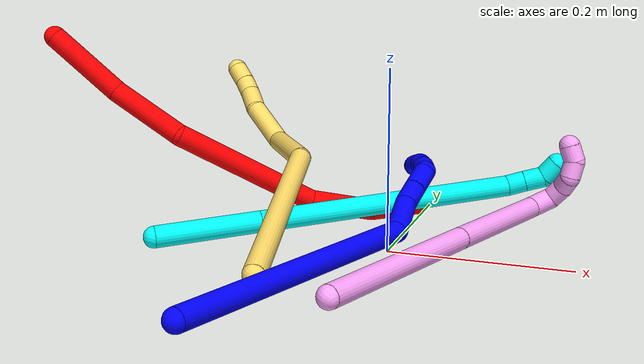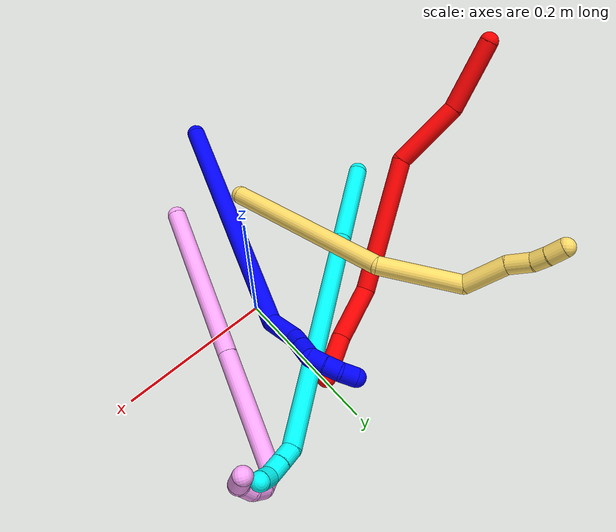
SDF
<sdf version="1.7">
 <world name="default">
  <plugin name="TubeGeneratorPlugin" filename="libtube_generator_plugin.so"/>
  <model name="photoneo_s_sensor">
   <static>1</static>
   <pose>0 0 2 1.57079 1.57079 3.14159</pose>
   <link name="link">
    <inertial><mass>0.1</mass></inertial>
    <sensor name="sensor" type="depth">
     <update_rate>30</update_rate>
     <camera>
      <horizontal_fov>1.22</horizontal_fov>
      <image><width>1920</width><height>1200</height><format>B8G8R8</format></image>
      <clip><near>0.1</near><far>4</far></clip>
      <depth_camera><output>points</output></depth_camera>
     </camera>
     <plugin name="camera_plugin" filename="libgazebo_ros_depth_camera.so">
      <baseline>0.2</baseline>
      <alwaysOn>1</alwaysOn>
      <updateRate>0.0</updateRate>
      <cameraName>camera_ir</cameraName>
      <imageTopicName>/camera/color/image_raw</imageTopicName>
      <cameraInfoTopicName>/camera/color/camera_info</cameraInfoTopicName>
      <depthImageTopicName>/camera/depth/image_raw</depthImageTopicName>
      <depthImageCameraInfoTopicName>/camera/depth/camera_info</depthImageCameraInfoTopicName>
      <pointCloudTopicName>/camera/depth/points</pointCloudTopicName>
      <frameName>fr_optical</frameName>
      <pointCloudCutoff>0.1</pointCloudCutoff>
      <pointCloudCutoffMax>2.0</pointCloudCutoffMax>
      <distortionK1>0</distortionK1>
      <distortionK2>0</distortionK2>
      <distortionK3>0</distortionK3>
      <distortionT1>0</distortionT1>
      <distortionT2>0</distortionT2>
      <CxPrime>0</CxPrime>
      <Cx>0</Cx>
      <Cy>0</Cy>
      <focalLength>0</focalLength>
      <hackBaseline>0</hackBaseline>
     </plugin>
    </sensor>
   </link>
  </model>
  <gravity>0 0 -9.8</gravity>
  <magnetic_field>6e-06 2.3e-05 -4.2e-05</magnetic_field>
  <atmosphere type="adiabatic"/>
  <physics name="default_physics" default="0" type="ode">
   <max_step_size>0.003</max_step_size>
   <real_time_factor>1</real_time_factor>
   <real_time_update_rate>1000</real_time_update_rate>
   <max_contacts>10000</max_contacts>
   <ode>
    <solver>
     <type>quick</type>
     <iters>100</iters>
     <sor>1.3</sor>
     <use_dynamic_moi_rescaling>0</use_dynamic_moi_rescaling>
    </solver>
    <constraints>
     <contact_max_correcting_vel>0</contact_max_correcting_vel>
     <contact_surface_layer>0.001</contact_surface_layer>
     <cfm>0</cfm>
     <erp>0.2</erp>
    </constraints>
   </ode>
  </physics>
  <scene><ambient>0.4 0.4 0.4 1</ambient><background>0.7 0.7 0.7 1</background><shadows>0</shadows></scene>
  <audio><device>default</device></audio>
  <spherical_coordinates>
   <surface_model>EARTH_WGS84</surface_model>
   <latitude_deg>0</latitude_deg>
   <longitude_deg>0</longitude_deg>
   <elevation>0</elevation>
   <heading_deg>0</heading_deg>
  </spherical_coordinates>
  <model name="bin">
   <static>1</static>
   <link name="bottom">
    <collision name="collision-bottom">
     <pose>0 0 -0.01 0 -0 0</pose>
     <geometry><box><size>0.8 0.6 0.02</size></box></geometry>
     <surface>
      <friction><ode><mu>100</mu><mu2>100</mu2></ode></friction>
      <contact><collide_bitmask>65535</collide_bitmask></contact>
     </surface>
    </collision>
   </link>
   <link name="west_wall">
    <collision name="collision-west_wall">
     <pose>-0.41 0 0.1 0 -0 0</pose>
     <geometry><box><size>0.02 0.6 0.2</size></box></geometry>
     <surface>
      <friction><ode><mu>100</mu><mu2>100</mu2></ode></friction>
      <contact><collide_bitmask>65535</collide_bitmask></contact>
     </surface>
    </collision>
   </link>
   <link name="east_wall">
    <collision name="collision-east_wall">
     <pose>0.41 0 0.1 0 -0 0</pose>
     <geometry><box><size>0.02 0.6 0.2</size></box></geometry>
     <surface>
      <friction><ode><mu>100</mu><mu2>100</mu2></ode></friction>
      <contact><collide_bitmask>65535</collide_bitmask></contact>
     </surface>
    </collision>
   </link>
   <link name="south_wall">
    <collision name="collision-south_wall">
     <pose>0 -0.31 0.1 0 -0 0</pose>
     <geometry><box><size>0.8 0.02 0.2</size></box></geometry>
     <surface>
      <friction><ode><mu>100</mu><mu2>100</mu2></ode></friction>
      <contact><collide_bitmask>65535</collide_bitmask></contact>
     </surface>
    </collision>
   </link>
   <link name="north_wall">
    <collision name="collision-north_wall">
     <pose>0 0.31 0.1 0 -0 0</pose>
     <geometry><box><size>0.8 0.02 0.2</size></box></geometry>
     <surface>
      <friction><ode><mu>100</mu><mu2>100</mu2></ode></friction>
      <contact><collide_bitmask>65535</collide_bitmask></contact>
     </surface>
    </collision>
   </link>
  </model>
  <model name="1">
   <static>0</static>
   <link name="1">
    <collision name="collision-cylinder-e_1_1_4">
     <pose>0.100072 0.088834 0.09997 -0.726483 0.642397 -0.251603</pose>
     <geometry><cylinder><radius>0.0125</radius><length>0.334065</length></cylinder></geometry>
     <surface>
      <friction><ode><mu>1.16</mu><mu2>1.16</mu2><slip1>0</slip1><slip2>0</slip2></ode></friction>
      <contact><ode><kp>1e+06</kp><kd>1</kd><max_vel>0</max_vel><min_depth>0.001</min_depth></ode></contact>
     </surface>
    </collision>
    <visual name="visual-cylinder-e_1_1_4">
     <pose>0.100072 0.088834 0.09997 -0.726483 0.642397 -0.251603</pose>
     <geometry><cylinder><radius>0.0125</radius><length>0.334065</length></cylinder></geometry>
     <material><ambient>0 0 1 1</ambient></material>
    </visual>
    <collision name="collision-cylinder-e_2_4_5">
     <pose>0.215937 0.177766 0.219471 -0.005018 0.679986 -0.001775</pose>
     <geometry><cylinder><radius>0.0125</radius><length>0.050235</length></cylinder></geometry>
     <surface>
      <friction><ode><mu>1.16</mu><mu2>1.16</mu2><slip1>0</slip1><slip2>0</slip2></ode></friction>
      <contact><ode><kp>1e+06</kp><kd>1</kd><max_vel>0</max_vel><min_depth>0.001</min_depth></ode></contact>
     </surface>
    </collision>
    <visual name="visual-cylinder-e_2_4_5">
     <pose>0.215937 0.177766 0.219471 -0.005018 0.679986 -0.001775</pose>
     <geometry><cylinder><radius>0.0125</radius><length>0.050235</length></cylinder></geometry>
     <material><ambient>0 0 1 1</ambient></material>
    </visual>
    <collision name="collision-cylinder-e_3_5_6">
     <pose>0.242111 0.177899 0.245866 -0.005076 0.986538 -0.002729</pose>
     <geometry><cylinder><radius>0.0125</radius><length>0.024889</length></cylinder></geometry>
     <surface>
      <friction><ode><mu>1.16</mu><mu2>1.16</mu2><slip1>0</slip1><slip2>0</slip2></ode></friction>
      <contact><ode><kp>1e+06</kp><kd>1</kd><max_vel>0</max_vel><min_depth>0.001</min_depth></ode></contact>
     </surface>
    </collision>
    <visual name="visual-cylinder-e_3_5_6">
     <pose>0.242111 0.177899 0.245866 -0.005076 0.986538 -0.002729</pose>
     <geometry><cylinder><radius>0.0125</radius><length>0.024889</length></cylinder></geometry>
     <material><ambient>0 0 1 1</ambient></material>
    </visual>
    <collision name="collision-cylinder-e_4_6_7">
     <pose>0.26416 0.1784 0.260848 -0.057365 0.962155 -0.02995</pose>
     <geometry><cylinder><radius>0.0125</radius><length>0.028445</length></cylinder></geometry>
     <surface>
      <friction><ode><mu>1.16</mu><mu2>1.16</mu2><slip1>0</slip1><slip2>0</slip2></ode></friction>
      <contact><ode><kp>1e+06</kp><kd>1</kd><max_vel>0</max_vel><min_depth>0.001</min_depth></ode></contact>
     </surface>
    </collision>
    <visual name="visual-cylinder-e_4_6_7">
     <pose>0.26416 0.1784 0.260848 -0.057365 0.962155 -0.02995</pose>
     <geometry><cylinder><radius>0.0125</radius><length>0.028445</length></cylinder></geometry>
     <material><ambient>0 0 1 1</ambient></material>
    </visual>
    <collision name="collision-cylinder-e_5_7_8">
     <pose>0.278021 0.18034 0.279456 -0.139675 0.204165 -0.014331</pose>
     <geometry><cylinder><radius>0.0125</radius><length>0.021634</length></cylinder></geometry>
     <surface>
      <friction><ode><mu>1.16</mu><mu2>1.16</mu2><slip1>0</slip1><slip2>0</slip2></ode></friction>
      <contact><ode><kp>1e+06</kp><kd>1</kd><max_vel>0</max_vel><min_depth>0.001</min_depth></ode></contact>
     </surface>
    </collision>
    <visual name="visual-cylinder-e_5_7_8">
     <pose>0.278021 0.18034 0.279456 -0.139675 0.204165 -0.014331</pose>
     <geometry><cylinder><radius>0.0125</radius><length>0.021634</length></cylinder></geometry>
     <material><ambient>0 0 1 1</ambient></material>
    </visual>
    <collision name="collision-cylinder-e_6_8_9">
     <pose>0.281054 0.183396 0.299879 -0.157856 0.083249 -0.006588</pose>
     <geometry><cylinder><radius>0.0125</radius><length>0.020187</length></cylinder></geometry>
     <surface>
      <friction><ode><mu>1.16</mu><mu2>1.16</mu2><slip1>0</slip1><slip2>0</slip2></ode></friction>
      <contact><ode><kp>1e+06</kp><kd>1</kd><max_vel>0</max_vel><min_depth>0.001</min_depth></ode></contact>
     </surface>
    </collision>
    <visual name="visual-cylinder-e_6_8_9">
     <pose>0.281054 0.183396 0.299879 -0.157856 0.083249 -0.006588</pose>
     <geometry><cylinder><radius>0.0125</radius><length>0.020187</length></cylinder></geometry>
     <material><ambient>0 0 1 1</ambient></material>
    </visual>
    <collision name="collision-cylinder-e_7_9_2">
     <pose>0.279351 0.187053 0.319546 -0.210022 -0.250027 0.026489</pose>
     <geometry><cylinder><radius>0.0125</radius><length>0.020545</length></cylinder></geometry>
     <surface>
      <friction><ode><mu>1.16</mu><mu2>1.16</mu2><slip1>0</slip1><slip2>0</slip2></ode></friction>
      <contact><ode><kp>1e+06</kp><kd>1</kd><max_vel>0</max_vel><min_depth>0.001</min_depth></ode></contact>
     </surface>
    </collision>
    <visual name="visual-cylinder-e_7_9_2">
     <pose>0.279351 0.187053 0.319546 -0.210022 -0.250027 0.026489</pose>
     <geometry><cylinder><radius>0.0125</radius><length>0.020545</length></cylinder></geometry>
     <material><ambient>0 0 1 1</ambient></material>
    </visual>
    <collision name="collision-sphere-2">
     <pose>0.27681 0.189128 0.329281 0 -0 0</pose>
     <geometry><sphere><radius>0.0125</radius></sphere></geometry>
     <surface>
      <friction><ode><mu>1.16</mu><mu2>1.16</mu2><slip1>0</slip1><slip2>0</slip2></ode></friction>
      <contact><ode><kp>1e+06</kp><kd>1</kd><max_vel>0</max_vel><min_depth>0.001</min_depth></ode></contact>
     </surface>
    </collision>
    <visual name="visual-sphere-2">
     <pose>0.27681 0.189128 0.329281 0 -0 0</pose>
     <geometry><sphere><radius>0.0125</radius></sphere></geometry>
     <material><ambient>0 0 1 1</ambient></material>
    </visual>
    <collision name="collision-sphere-9">
     <pose>0.281893 0.184978 0.309812 0 -0 0</pose>
     <geometry><sphere><radius>0.0125</radius></sphere></geometry>
     <surface>
      <friction><ode><mu>1.16</mu><mu2>1.16</mu2><slip1>0</slip1><slip2>0</slip2></ode></friction>
      <contact><ode><kp>1e+06</kp><kd>1</kd><max_vel>0</max_vel><min_depth>0.001</min_depth></ode></contact>
     </surface>
    </collision>
    <visual name="visual-sphere-9">
     <pose>0.281893 0.184978 0.309812 0 -0 0</pose>
     <geometry><sphere><radius>0.0125</radius></sphere></geometry>
     <material><ambient>0 0 1 1</ambient></material>
    </visual>
    <collision name="collision-sphere-4">
     <pose>0.200144 0.177668 0.19994 0 -0 0</pose>
     <geometry><sphere><radius>0.0125</radius></sphere></geometry>
     <surface>
      <friction><ode><mu>1.16</mu><mu2>1.16</mu2><slip1>0</slip1><slip2>0</slip2></ode></friction>
      <contact><ode><kp>1e+06</kp><kd>1</kd><max_vel>0</max_vel><min_depth>0.001</min_depth></ode></contact>
     </surface>
    </collision>
    <visual name="visual-sphere-4">
     <pose>0.200144 0.177668 0.19994 0 -0 0</pose>
     <geometry><sphere><radius>0.0125</radius></sphere></geometry>
     <material><ambient>0 0 1 1</ambient></material>
    </visual>
    <collision name="collision-sphere-1">
     <geometry><sphere><radius>0.0125</radius></sphere></geometry>
     <surface>
      <friction><ode><mu>1.16</mu><mu2>1.16</mu2><slip1>0</slip1><slip2>0</slip2></ode></friction>
      <contact><ode><kp>1e+06</kp><kd>1</kd><max_vel>0</max_vel><min_depth>0.001</min_depth></ode></contact>
     </surface>
    </collision>
    <visual name="visual-sphere-1">
     <geometry><sphere><radius>0.0125</radius></sphere></geometry>
     <material><ambient>0 0 1 1</ambient></material>
    </visual>
    <collision name="collision-sphere-8">
     <pose>0.280214 0.181815 0.289945 0 -0 0</pose>
     <geometry><sphere><radius>0.0125</radius></sphere></geometry>
     <surface>
      <friction><ode><mu>1.16</mu><mu2>1.16</mu2><slip1>0</slip1><slip2>0</slip2></ode></friction>
      <contact><ode><kp>1e+06</kp><kd>1</kd><max_vel>0</max_vel><min_depth>0.001</min_depth></ode></contact>
     </surface>
    </collision>
    <visual name="visual-sphere-8">
     <pose>0.280214 0.181815 0.289945 0 -0 0</pose>
     <geometry><sphere><radius>0.0125</radius></sphere></geometry>
     <material><ambient>0 0 1 1</ambient></material>
    </visual>
    <collision name="collision-sphere-5">
     <pose>0.231731 0.177864 0.239002 0 -0 0</pose>
     <geometry><sphere><radius>0.0125</radius></sphere></geometry>
     <surface>
      <friction><ode><mu>1.16</mu><mu2>1.16</mu2><slip1>0</slip1><slip2>0</slip2></ode></friction>
      <contact><ode><kp>1e+06</kp><kd>1</kd><max_vel>0</max_vel><min_depth>0.001</min_depth></ode></contact>
     </surface>
    </collision>
    <visual name="visual-sphere-5">
     <pose>0.231731 0.177864 0.239002 0 -0 0</pose>
     <geometry><sphere><radius>0.0125</radius></sphere></geometry>
     <material><ambient>0 0 1 1</ambient></material>
    </visual>
    <collision name="collision-sphere-6">
     <pose>0.252492 0.177933 0.25273 0 -0 0</pose>
     <geometry><sphere><radius>0.0125</radius></sphere></geometry>
     <surface>
      <friction><ode><mu>1.16</mu><mu2>1.16</mu2><slip1>0</slip1><slip2>0</slip2></ode></friction>
      <contact><ode><kp>1e+06</kp><kd>1</kd><max_vel>0</max_vel><min_depth>0.001</min_depth></ode></contact>
     </surface>
    </collision>
    <visual name="visual-sphere-6">
     <pose>0.252492 0.177933 0.25273 0 -0 0</pose>
     <geometry><sphere><radius>0.0125</radius></sphere></geometry>
     <material><ambient>0 0 1 1</ambient></material>
    </visual>
    <collision name="collision-sphere-7">
     <pose>0.275828 0.178866 0.268967 0 -0 0</pose>
     <geometry><sphere><radius>0.0125</radius></sphere></geometry>
     <surface>
      <friction><ode><mu>1.16</mu><mu2>1.16</mu2><slip1>0</slip1><slip2>0</slip2></ode></friction>
      <contact><ode><kp>1e+06</kp><kd>1</kd><max_vel>0</max_vel><min_depth>0.001</min_depth></ode></contact>
     </surface>
    </collision>
    <visual name="visual-sphere-7">
     <pose>0.275828 0.178866 0.268967 0 -0 0</pose>
     <geometry><sphere><radius>0.0125</radius></sphere></geometry>
     <material><ambient>0 0 1 1</ambient></material>
    </visual>
    <inertial>
     <pose>0.150491 0.119111 0.153251 0 -0 0</pose>
     <mass>0.5</mass>
     <inertia>
      <ixx>0.001836</ixx>
      <ixy>0</ixy>
      <ixz>0</ixz>
      <iyy>0.001983</iyy>
      <iyz>0</iyz>
      <izz>-0.003516</izz>
     </inertia>
    </inertial>
   </link>
   <pose>-0.113354 -0.278818 0.011499 -1.58076 -0.734569 0.58735</pose>
  </model>
  <model name="2">
   <static>0</static>
   <link name="2">
    <collision name="collision-cylinder-e_1_1_4">
     <pose>-0.00475 0.008377 0.028489 -0.285997 -0.158631 0.022887</pose>
     <geometry><cylinder><radius>0.0125</radius><length>0.060145</length></cylinder></geometry>
     <surface>
      <friction><ode><mu>1.16</mu><mu2>1.16</mu2><slip1>0</slip1><slip2>0</slip2></ode></friction>
      <contact><ode><kp>1e+06</kp><kd>1</kd><max_vel>0</max_vel><min_depth>0.001</min_depth></ode></contact>
     </surface>
    </collision>
    <visual name="visual-cylinder-e_1_1_4">
     <pose>-0.00475 0.008377 0.028489 -0.285997 -0.158631 0.022887</pose>
     <geometry><cylinder><radius>0.0125</radius><length>0.060145</length></cylinder></geometry>
     <material><ambient>1 0 0 1</ambient></material>
    </visual>
    <collision name="collision-cylinder-e_2_4_5">
     <pose>-0.02241 0.019263 0.091136 -0.073301 -0.360433 0.013361</pose>
     <geometry><cylinder><radius>0.0125</radius><length>0.073205</length></cylinder></geometry>
     <surface>
      <friction><ode><mu>1.16</mu><mu2>1.16</mu2><slip1>0</slip1><slip2>0</slip2></ode></friction>
      <contact><ode><kp>1e+06</kp><kd>1</kd><max_vel>0</max_vel><min_depth>0.001</min_depth></ode></contact>
     </surface>
    </collision>
    <visual name="visual-cylinder-e_2_4_5">
     <pose>-0.02241 0.019263 0.091136 -0.073301 -0.360433 0.013361</pose>
     <geometry><cylinder><radius>0.0125</radius><length>0.073205</length></cylinder></geometry>
     <material><ambient>1 0 0 1</ambient></material>
    </visual>
    <collision name="collision-cylinder-e_3_5_6">
     <pose>-0.094052 0.031649 0.190496 -0.15035 -0.727614 0.057339</pose>
     <geometry><cylinder><radius>0.0125</radius><length>0.176617</length></cylinder></geometry>
     <surface>
      <friction><ode><mu>1.16</mu><mu2>1.16</mu2><slip1>0</slip1><slip2>0</slip2></ode></friction>
      <contact><ode><kp>1e+06</kp><kd>1</kd><max_vel>0</max_vel><min_depth>0.001</min_depth></ode></contact>
     </surface>
    </collision>
    <visual name="visual-cylinder-e_3_5_6">
     <pose>-0.094052 0.031649 0.190496 -0.15035 -0.727614 0.057339</pose>
     <geometry><cylinder><radius>0.0125</radius><length>0.176617</length></cylinder></geometry>
     <material><ambient>1 0 0 1</ambient></material>
    </visual>
    <collision name="collision-cylinder-e_4_6_7">
     <pose>-0.177719 0.022564 0.291148 0.491186 -0.55514 -0.142593</pose>
     <geometry><cylinder><radius>0.0125</radius><length>0.094615</length></cylinder></geometry>
     <surface>
      <friction><ode><mu>1.16</mu><mu2>1.16</mu2><slip1>0</slip1><slip2>0</slip2></ode></friction>
      <contact><ode><kp>1e+06</kp><kd>1</kd><max_vel>0</max_vel><min_depth>0.001</min_depth></ode></contact>
     </surface>
    </collision>
    <visual name="visual-cylinder-e_4_6_7">
     <pose>-0.177719 0.022564 0.291148 0.491186 -0.55514 -0.142593</pose>
     <geometry><cylinder><radius>0.0125</radius><length>0.094615</length></cylinder></geometry>
     <material><ambient>1 0 0 1</ambient></material>
    </visual>
    <collision name="collision-cylinder-e_5_7_2">
     <pose>-0.238405 -0.005814 0.356752 0.302637 -0.847118 -0.137279</pose>
     <geometry><cylinder><radius>0.0125</radius><length>0.095419</length></cylinder></geometry>
     <surface>
      <friction><ode><mu>1.16</mu><mu2>1.16</mu2><slip1>0</slip1><slip2>0</slip2></ode></friction>
      <contact><ode><kp>1e+06</kp><kd>1</kd><max_vel>0</max_vel><min_depth>0.001</min_depth></ode></contact>
     </surface>
    </collision>
    <visual name="visual-cylinder-e_5_7_2">
     <pose>-0.238405 -0.005814 0.356752 0.302637 -0.847118 -0.137279</pose>
     <geometry><cylinder><radius>0.0125</radius><length>0.095419</length></cylinder></geometry>
     <material><ambient>1 0 0 1</ambient></material>
    </visual>
    <collision name="collision-sphere-2">
     <pose>-0.274157 -0.015229 0.386907 0 -0 0</pose>
     <geometry><sphere><radius>0.0125</radius></sphere></geometry>
     <surface>
      <friction><ode><mu>1.16</mu><mu2>1.16</mu2><slip1>0</slip1><slip2>0</slip2></ode></friction>
      <contact><ode><kp>1e+06</kp><kd>1</kd><max_vel>0</max_vel><min_depth>0.001</min_depth></ode></contact>
     </surface>
    </collision>
    <visual name="visual-sphere-2">
     <pose>-0.274157 -0.015229 0.386907 0 -0 0</pose>
     <geometry><sphere><radius>0.0125</radius></sphere></geometry>
     <material><ambient>1 0 0 1</ambient></material>
    </visual>
    <collision name="collision-sphere-7">
     <pose>-0.202653 0.003601 0.326598 0 -0 0</pose>
     <geometry><sphere><radius>0.0125</radius></sphere></geometry>
     <surface>
      <friction><ode><mu>1.16</mu><mu2>1.16</mu2><slip1>0</slip1><slip2>0</slip2></ode></friction>
      <contact><ode><kp>1e+06</kp><kd>1</kd><max_vel>0</max_vel><min_depth>0.001</min_depth></ode></contact>
     </surface>
    </collision>
    <visual name="visual-sphere-7">
     <pose>-0.202653 0.003601 0.326598 0 -0 0</pose>
     <geometry><sphere><radius>0.0125</radius></sphere></geometry>
     <material><ambient>1 0 0 1</ambient></material>
    </visual>
    <collision name="collision-sphere-6">
     <pose>-0.152785 0.041527 0.255697 0 -0 0</pose>
     <geometry><sphere><radius>0.0125</radius></sphere></geometry>
     <surface>
      <friction><ode><mu>1.16</mu><mu2>1.16</mu2><slip1>0</slip1><slip2>0</slip2></ode></friction>
      <contact><ode><kp>1e+06</kp><kd>1</kd><max_vel>0</max_vel><min_depth>0.001</min_depth></ode></contact>
     </surface>
    </collision>
    <visual name="visual-sphere-6">
     <pose>-0.152785 0.041527 0.255697 0 -0 0</pose>
     <geometry><sphere><radius>0.0125</radius></sphere></geometry>
     <material><ambient>1 0 0 1</ambient></material>
    </visual>
    <collision name="collision-sphere-5">
     <pose>-0.035319 0.021771 0.125295 0 -0 0</pose>
     <geometry><sphere><radius>0.0125</radius></sphere></geometry>
     <surface>
      <friction><ode><mu>1.16</mu><mu2>1.16</mu2><slip1>0</slip1><slip2>0</slip2></ode></friction>
      <contact><ode><kp>1e+06</kp><kd>1</kd><max_vel>0</max_vel><min_depth>0.001</min_depth></ode></contact>
     </surface>
    </collision>
    <visual name="visual-sphere-5">
     <pose>-0.035319 0.021771 0.125295 0 -0 0</pose>
     <geometry><sphere><radius>0.0125</radius></sphere></geometry>
     <material><ambient>1 0 0 1</ambient></material>
    </visual>
    <collision name="collision-sphere-1">
     <geometry><sphere><radius>0.0125</radius></sphere></geometry>
     <surface>
      <friction><ode><mu>1.16</mu><mu2>1.16</mu2><slip1>0</slip1><slip2>0</slip2></ode></friction>
      <contact><ode><kp>1e+06</kp><kd>1</kd><max_vel>0</max_vel><min_depth>0.001</min_depth></ode></contact>
     </surface>
    </collision>
    <visual name="visual-sphere-1">
     <geometry><sphere><radius>0.0125</radius></sphere></geometry>
     <material><ambient>1 0 0 1</ambient></material>
    </visual>
    <collision name="collision-sphere-4">
     <pose>-0.009501 0.016755 0.056977 0 -0 0</pose>
     <geometry><sphere><radius>0.0125</radius></sphere></geometry>
     <surface>
      <friction><ode><mu>1.16</mu><mu2>1.16</mu2><slip1>0</slip1><slip2>0</slip2></ode></friction>
      <contact><ode><kp>1e+06</kp><kd>1</kd><max_vel>0</max_vel><min_depth>0.001</min_depth></ode></contact>
     </surface>
    </collision>
    <visual name="visual-sphere-4">
     <pose>-0.009501 0.016755 0.056977 0 -0 0</pose>
     <geometry><sphere><radius>0.0125</radius></sphere></geometry>
     <material><ambient>1 0 0 1</ambient></material>
    </visual>
    <inertial>
     <pose>-0.116201 0.018168 0.207235 0 -0 0</pose>
     <mass>0.5</mass>
     <inertia>
      <ixx>0.000497</ixx>
      <ixy>0</ixy>
      <ixz>0</ixz>
      <iyy>0.000663</iyy>
      <iyz>0</iyz>
      <izz>0.000437</izz>
     </inertia>
    </inertial>
   </link>
   <pose>0.000124 0.142548 0.016441 -2.17058 1.27491 1.21618</pose>
  </model>
  <model name="3">
   <static>0</static>
   <link name="3">
    <collision name="collision-cylinder-e_1_1_4">
     <pose>0.043862 0.030756 -0.027639 -2.30285 0.814868 -1.53836</pose>
     <geometry><cylinder><radius>0.0125</radius><length>0.120561</length></cylinder></geometry>
     <surface>
      <friction><ode><mu>1.16</mu><mu2>1.16</mu2><slip1>0</slip1><slip2>0</slip2></ode></friction>
      <contact><ode><kp>1e+06</kp><kd>1</kd><max_vel>0</max_vel><min_depth>0.001</min_depth></ode></contact>
     </surface>
    </collision>
    <visual name="visual-cylinder-e_1_1_4">
     <pose>0.043862 0.030756 -0.027639 -2.30285 0.814868 -1.53836</pose>
     <geometry><cylinder><radius>0.0125</radius><length>0.120561</length></cylinder></geometry>
     <material><ambient>0.003922 1 0.996078 1</ambient></material>
    </visual>
    <collision name="collision-cylinder-e_2_4_5">
     <pose>0.201073 0.14093 -0.12657 -2.30233 0.8155 -1.53853</pose>
     <geometry><cylinder><radius>0.0125</radius><length>0.311369</length></cylinder></geometry>
     <surface>
      <friction><ode><mu>1.16</mu><mu2>1.16</mu2><slip1>0</slip1><slip2>0</slip2></ode></friction>
      <contact><ode><kp>1e+06</kp><kd>1</kd><max_vel>0</max_vel><min_depth>0.001</min_depth></ode></contact>
     </surface>
    </collision>
    <visual name="visual-cylinder-e_2_4_5">
     <pose>0.201073 0.14093 -0.12657 -2.30233 0.8155 -1.53853</pose>
     <geometry><cylinder><radius>0.0125</radius><length>0.311369</length></cylinder></geometry>
     <material><ambient>0.003922 1 0.996078 1</ambient></material>
    </visual>
    <collision name="collision-cylinder-e_3_5_6">
     <pose>0.318759 0.229085 -0.203487 -2.14277 0.395374 -0.703768</pose>
     <geometry><cylinder><radius>0.0125</radius><length>0.022521</length></cylinder></geometry>
     <surface>
      <friction><ode><mu>1.16</mu><mu2>1.16</mu2><slip1>0</slip1><slip2>0</slip2></ode></friction>
      <contact><ode><kp>1e+06</kp><kd>1</kd><max_vel>0</max_vel><min_depth>0.001</min_depth></ode></contact>
     </surface>
    </collision>
    <visual name="visual-cylinder-e_3_5_6">
     <pose>0.318759 0.229085 -0.203487 -2.14277 0.395374 -0.703768</pose>
     <geometry><cylinder><radius>0.0125</radius><length>0.022521</length></cylinder></geometry>
     <material><ambient>0.003922 1 0.996078 1</ambient></material>
    </visual>
    <collision name="collision-cylinder-e_4_6_7">
     <pose>0.327621 0.24705 -0.214575 -2.10538 0.399255 -0.682106</pose>
     <geometry><cylinder><radius>0.0125</radius><length>0.023277</length></cylinder></geometry>
     <surface>
      <friction><ode><mu>1.16</mu><mu2>1.16</mu2><slip1>0</slip1><slip2>0</slip2></ode></friction>
      <contact><ode><kp>1e+06</kp><kd>1</kd><max_vel>0</max_vel><min_depth>0.001</min_depth></ode></contact>
     </surface>
    </collision>
    <visual name="visual-cylinder-e_4_6_7">
     <pose>0.327621 0.24705 -0.214575 -2.10538 0.399255 -0.682106</pose>
     <geometry><cylinder><radius>0.0125</radius><length>0.023277</length></cylinder></geometry>
     <material><ambient>0.003922 1 0.996078 1</ambient></material>
    </visual>
    <collision name="collision-cylinder-e_5_7_2">
     <pose>0.331466 0.262842 -0.229008 -2.50977 -0.061015 0.18619</pose>
     <geometry><cylinder><radius>0.0125</radius><length>0.022272</length></cylinder></geometry>
     <surface>
      <friction><ode><mu>1.16</mu><mu2>1.16</mu2><slip1>0</slip1><slip2>0</slip2></ode></friction>
      <contact><ode><kp>1e+06</kp><kd>1</kd><max_vel>0</max_vel><min_depth>0.001</min_depth></ode></contact>
     </surface>
    </collision>
    <visual name="visual-cylinder-e_5_7_2">
     <pose>0.331466 0.262842 -0.229008 -2.50977 -0.061015 0.18619</pose>
     <geometry><cylinder><radius>0.0125</radius><length>0.022272</length></cylinder></geometry>
     <material><ambient>0.003922 1 0.996078 1</ambient></material>
    </visual>
    <collision name="collision-sphere-2">
     <pose>0.330787 0.269407 -0.237977 0 -0 0</pose>
     <geometry><sphere><radius>0.0125</radius></sphere></geometry>
     <surface>
      <friction><ode><mu>1.16</mu><mu2>1.16</mu2><slip1>0</slip1><slip2>0</slip2></ode></friction>
      <contact><ode><kp>1e+06</kp><kd>1</kd><max_vel>0</max_vel><min_depth>0.001</min_depth></ode></contact>
     </surface>
    </collision>
    <visual name="visual-sphere-2">
     <pose>0.330787 0.269407 -0.237977 0 -0 0</pose>
     <geometry><sphere><radius>0.0125</radius></sphere></geometry>
     <material><ambient>0.003922 1 0.996078 1</ambient></material>
    </visual>
    <collision name="collision-sphere-7">
     <pose>0.332145 0.256277 -0.220038 0 -0 0</pose>
     <geometry><sphere><radius>0.0125</radius></sphere></geometry>
     <surface>
      <friction><ode><mu>1.16</mu><mu2>1.16</mu2><slip1>0</slip1><slip2>0</slip2></ode></friction>
      <contact><ode><kp>1e+06</kp><kd>1</kd><max_vel>0</max_vel><min_depth>0.001</min_depth></ode></contact>
     </surface>
    </collision>
    <visual name="visual-sphere-7">
     <pose>0.332145 0.256277 -0.220038 0 -0 0</pose>
     <geometry><sphere><radius>0.0125</radius></sphere></geometry>
     <material><ambient>0.003922 1 0.996078 1</ambient></material>
    </visual>
    <collision name="collision-sphere-6">
     <pose>0.323097 0.237823 -0.209112 0 -0 0</pose>
     <geometry><sphere><radius>0.0125</radius></sphere></geometry>
     <surface>
      <friction><ode><mu>1.16</mu><mu2>1.16</mu2><slip1>0</slip1><slip2>0</slip2></ode></friction>
      <contact><ode><kp>1e+06</kp><kd>1</kd><max_vel>0</max_vel><min_depth>0.001</min_depth></ode></contact>
     </surface>
    </collision>
    <visual name="visual-sphere-6">
     <pose>0.323097 0.237823 -0.209112 0 -0 0</pose>
     <geometry><sphere><radius>0.0125</radius></sphere></geometry>
     <material><ambient>0.003922 1 0.996078 1</ambient></material>
    </visual>
    <collision name="collision-sphere-5">
     <pose>0.314422 0.220348 -0.197862 0 -0 0</pose>
     <geometry><sphere><radius>0.0125</radius></sphere></geometry>
     <surface>
      <friction><ode><mu>1.16</mu><mu2>1.16</mu2><slip1>0</slip1><slip2>0</slip2></ode></friction>
      <contact><ode><kp>1e+06</kp><kd>1</kd><max_vel>0</max_vel><min_depth>0.001</min_depth></ode></contact>
     </surface>
    </collision>
    <visual name="visual-sphere-5">
     <pose>0.314422 0.220348 -0.197862 0 -0 0</pose>
     <geometry><sphere><radius>0.0125</radius></sphere></geometry>
     <material><ambient>0.003922 1 0.996078 1</ambient></material>
    </visual>
    <collision name="collision-sphere-1">
     <geometry><sphere><radius>0.0125</radius></sphere></geometry>
     <surface>
      <friction><ode><mu>1.16</mu><mu2>1.16</mu2><slip1>0</slip1><slip2>0</slip2></ode></friction>
      <contact><ode><kp>1e+06</kp><kd>1</kd><max_vel>0</max_vel><min_depth>0.001</min_depth></ode></contact>
     </surface>
    </collision>
    <visual name="visual-sphere-1">
     <geometry><sphere><radius>0.0125</radius></sphere></geometry>
     <material><ambient>0.003922 1 0.996078 1</ambient></material>
    </visual>
    <collision name="collision-sphere-4">
     <pose>0.087725 0.061513 -0.055277 0 -0 0</pose>
     <geometry><sphere><radius>0.0125</radius></sphere></geometry>
     <surface>
      <friction><ode><mu>1.16</mu><mu2>1.16</mu2><slip1>0</slip1><slip2>0</slip2></ode></friction>
      <contact><ode><kp>1e+06</kp><kd>1</kd><max_vel>0</max_vel><min_depth>0.001</min_depth></ode></contact>
     </surface>
    </collision>
    <visual name="visual-sphere-4">
     <pose>0.087725 0.061513 -0.055277 0 -0 0</pose>
     <geometry><sphere><radius>0.0125</radius></sphere></geometry>
     <material><ambient>0.003922 1 0.996078 1</ambient></material>
    </visual>
    <inertial>
     <pose>0.180167 0.128706 -0.11484 0 -0 0</pose>
     <mass>0.5</mass>
     <inertia>
      <ixx>-0.001748</ixx>
      <ixy>0</ixy>
      <ixz>0</ixz>
      <iyy>-0.000426</iyy>
      <iyz>0</iyz>
      <izz>-0.00334</izz>
     </inertia>
    </inertial>
   </link>
   <pose>-0.245775 -0.071218 0.011674 3.06884 0.53472 1.14968</pose>
  </model>
  <model name="4">
   <static>0</static>
   <link name="4">
    <collision name="collision-cylinder-e_1_1_4">
     <pose>0.064995 0.088732 0.029729 -1.2475 0.607056 -0.443351</pose>
     <geometry><cylinder><radius>0.0125</radius><length>0.227873</length></cylinder></geometry>
     <surface>
      <friction><ode><mu>1.16</mu><mu2>1.16</mu2><slip1>0</slip1><slip2>0</slip2></ode></friction>
      <contact><ode><kp>1e+06</kp><kd>1</kd><max_vel>0</max_vel><min_depth>0.001</min_depth></ode></contact>
     </surface>
    </collision>
    <visual name="visual-cylinder-e_1_1_4">
     <pose>0.064995 0.088732 0.029729 -1.2475 0.607056 -0.443351</pose>
     <geometry><cylinder><radius>0.0125</radius><length>0.227873</length></cylinder></geometry>
     <material><ambient>1 0.65098 0.996078 1</ambient></material>
    </visual>
    <collision name="collision-cylinder-e_2_4_5">
     <pose>0.176502 0.241929 0.081008 -1.2482 0.600091 -0.438426</pose>
     <geometry><cylinder><radius>0.0125</radius><length>0.164725</length></cylinder></geometry>
     <surface>
      <friction><ode><mu>1.16</mu><mu2>1.16</mu2><slip1>0</slip1><slip2>0</slip2></ode></friction>
      <contact><ode><kp>1e+06</kp><kd>1</kd><max_vel>0</max_vel><min_depth>0.001</min_depth></ode></contact>
     </surface>
    </collision>
    <visual name="visual-cylinder-e_2_4_5">
     <pose>0.176502 0.241929 0.081008 -1.2482 0.600091 -0.438426</pose>
     <geometry><cylinder><radius>0.0125</radius><length>0.164725</length></cylinder></geometry>
     <material><ambient>1 0.65098 0.996078 1</ambient></material>
    </visual>
    <collision name="collision-cylinder-e_3_5_6">
     <pose>0.235511 0.311173 0.099931 -2.07344 1.15938 -1.67233</pose>
     <geometry><cylinder><radius>0.0125</radius><length>0.027271</length></cylinder></geometry>
     <surface>
      <friction><ode><mu>1.16</mu><mu2>1.16</mu2><slip1>0</slip1><slip2>0</slip2></ode></friction>
      <contact><ode><kp>1e+06</kp><kd>1</kd><max_vel>0</max_vel><min_depth>0.001</min_depth></ode></contact>
     </surface>
    </collision>
    <visual name="visual-cylinder-e_3_5_6">
     <pose>0.235511 0.311173 0.099931 -2.07344 1.15938 -1.67233</pose>
     <geometry><cylinder><radius>0.0125</radius><length>0.027271</length></cylinder></geometry>
     <material><ambient>1 0.65098 0.996078 1</ambient></material>
    </visual>
    <collision name="collision-cylinder-e_4_6_7">
     <pose>0.256782 0.312364 0.093979 2.31818 1.06207 1.86294</pose>
     <geometry><cylinder><radius>0.0125</radius><length>0.020089</length></cylinder></geometry>
     <surface>
      <friction><ode><mu>1.16</mu><mu2>1.16</mu2><slip1>0</slip1><slip2>0</slip2></ode></friction>
      <contact><ode><kp>1e+06</kp><kd>1</kd><max_vel>0</max_vel><min_depth>0.001</min_depth></ode></contact>
     </surface>
    </collision>
    <visual name="visual-cylinder-e_4_6_7">
     <pose>0.256782 0.312364 0.093979 2.31818 1.06207 1.86294</pose>
     <geometry><cylinder><radius>0.0125</radius><length>0.020089</length></cylinder></geometry>
     <material><ambient>1 0.65098 0.996078 1</ambient></material>
    </visual>
    <collision name="collision-cylinder-e_5_7_8">
     <pose>0.271585 0.30159 0.087134 2.02631 0.64588 0.984982</pose>
     <geometry><cylinder><radius>0.0125</radius><length>0.020039</length></cylinder></geometry>
     <surface>
      <friction><ode><mu>1.16</mu><mu2>1.16</mu2><slip1>0</slip1><slip2>0</slip2></ode></friction>
      <contact><ode><kp>1e+06</kp><kd>1</kd><max_vel>0</max_vel><min_depth>0.001</min_depth></ode></contact>
     </surface>
    </collision>
    <visual name="visual-cylinder-e_5_7_8">
     <pose>0.271585 0.30159 0.087134 2.02631 0.64588 0.984982</pose>
     <geometry><cylinder><radius>0.0125</radius><length>0.020039</length></cylinder></geometry>
     <material><ambient>1 0.65098 0.996078 1</ambient></material>
    </visual>
    <collision name="collision-cylinder-e_6_8_9">
     <pose>0.286389 0.29032 0.086134 1.01798 1.07019 0.638925</pose>
     <geometry><cylinder><radius>0.0125</radius><length>0.020002</length></cylinder></geometry>
     <surface>
      <friction><ode><mu>1.16</mu><mu2>1.16</mu2><slip1>0</slip1><slip2>0</slip2></ode></friction>
      <contact><ode><kp>1e+06</kp><kd>1</kd><max_vel>0</max_vel><min_depth>0.001</min_depth></ode></contact>
     </surface>
    </collision>
    <visual name="visual-cylinder-e_6_8_9">
     <pose>0.286389 0.29032 0.086134 1.01798 1.07019 0.638925</pose>
     <geometry><cylinder><radius>0.0125</radius><length>0.020002</length></cylinder></geometry>
     <material><ambient>1 0.65098 0.996078 1</ambient></material>
    </visual>
    <collision name="collision-cylinder-e_7_9_2">
     <pose>0.300083 0.28003 0.094762 0.793262 0.514417 0.219447</pose>
     <geometry><cylinder><radius>0.0125</radius><length>0.020002</length></cylinder></geometry>
     <surface>
      <friction><ode><mu>1.16</mu><mu2>1.16</mu2><slip1>0</slip1><slip2>0</slip2></ode></friction>
      <contact><ode><kp>1e+06</kp><kd>1</kd><max_vel>0</max_vel><min_depth>0.001</min_depth></ode></contact>
     </surface>
    </collision>
    <visual name="visual-cylinder-e_7_9_2">
     <pose>0.300083 0.28003 0.094762 0.793262 0.514417 0.219447</pose>
     <geometry><cylinder><radius>0.0125</radius><length>0.020002</length></cylinder></geometry>
     <material><ambient>1 0.65098 0.996078 1</ambient></material>
    </visual>
    <collision name="collision-sphere-2">
     <pose>0.305004 0.273825 0.10087 0 -0 0</pose>
     <geometry><sphere><radius>0.0125</radius></sphere></geometry>
     <surface>
      <friction><ode><mu>1.16</mu><mu2>1.16</mu2><slip1>0</slip1><slip2>0</slip2></ode></friction>
      <contact><ode><kp>1e+06</kp><kd>1</kd><max_vel>0</max_vel><min_depth>0.001</min_depth></ode></contact>
     </surface>
    </collision>
    <visual name="visual-sphere-2">
     <pose>0.305004 0.273825 0.10087 0 -0 0</pose>
     <geometry><sphere><radius>0.0125</radius></sphere></geometry>
     <material><ambient>1 0.65098 0.996078 1</ambient></material>
    </visual>
    <collision name="collision-sphere-9">
     <pose>0.295162 0.286235 0.088654 0 -0 0</pose>
     <geometry><sphere><radius>0.0125</radius></sphere></geometry>
     <surface>
      <friction><ode><mu>1.16</mu><mu2>1.16</mu2><slip1>0</slip1><slip2>0</slip2></ode></friction>
      <contact><ode><kp>1e+06</kp><kd>1</kd><max_vel>0</max_vel><min_depth>0.001</min_depth></ode></contact>
     </surface>
    </collision>
    <visual name="visual-sphere-9">
     <pose>0.295162 0.286235 0.088654 0 -0 0</pose>
     <geometry><sphere><radius>0.0125</radius></sphere></geometry>
     <material><ambient>1 0.65098 0.996078 1</ambient></material>
    </visual>
    <collision name="collision-sphere-4">
     <pose>0.129991 0.177463 0.059459 0 -0 0</pose>
     <geometry><sphere><radius>0.0125</radius></sphere></geometry>
     <surface>
      <friction><ode><mu>1.16</mu><mu2>1.16</mu2><slip1>0</slip1><slip2>0</slip2></ode></friction>
      <contact><ode><kp>1e+06</kp><kd>1</kd><max_vel>0</max_vel><min_depth>0.001</min_depth></ode></contact>
     </surface>
    </collision>
    <visual name="visual-sphere-4">
     <pose>0.129991 0.177463 0.059459 0 -0 0</pose>
     <geometry><sphere><radius>0.0125</radius></sphere></geometry>
     <material><ambient>1 0.65098 0.996078 1</ambient></material>
    </visual>
    <collision name="collision-sphere-1">
     <geometry><sphere><radius>0.0125</radius></sphere></geometry>
     <surface>
      <friction><ode><mu>1.16</mu><mu2>1.16</mu2><slip1>0</slip1><slip2>0</slip2></ode></friction>
      <contact><ode><kp>1e+06</kp><kd>1</kd><max_vel>0</max_vel><min_depth>0.001</min_depth></ode></contact>
     </surface>
    </collision>
    <visual name="visual-sphere-1">
     <geometry><sphere><radius>0.0125</radius></sphere></geometry>
     <material><ambient>1 0.65098 0.996078 1</ambient></material>
    </visual>
    <collision name="collision-sphere-8">
     <pose>0.277615 0.294405 0.083614 0 -0 0</pose>
     <geometry><sphere><radius>0.0125</radius></sphere></geometry>
     <surface>
      <friction><ode><mu>1.16</mu><mu2>1.16</mu2><slip1>0</slip1><slip2>0</slip2></ode></friction>
      <contact><ode><kp>1e+06</kp><kd>1</kd><max_vel>0</max_vel><min_depth>0.001</min_depth></ode></contact>
     </surface>
    </collision>
    <visual name="visual-sphere-8">
     <pose>0.277615 0.294405 0.083614 0 -0 0</pose>
     <geometry><sphere><radius>0.0125</radius></sphere></geometry>
     <material><ambient>1 0.65098 0.996078 1</ambient></material>
    </visual>
    <collision name="collision-sphere-5">
     <pose>0.223013 0.306395 0.102558 0 -0 0</pose>
     <geometry><sphere><radius>0.0125</radius></sphere></geometry>
     <surface>
      <friction><ode><mu>1.16</mu><mu2>1.16</mu2><slip1>0</slip1><slip2>0</slip2></ode></friction>
      <contact><ode><kp>1e+06</kp><kd>1</kd><max_vel>0</max_vel><min_depth>0.001</min_depth></ode></contact>
     </surface>
    </collision>
    <visual name="visual-sphere-5">
     <pose>0.223013 0.306395 0.102558 0 -0 0</pose>
     <geometry><sphere><radius>0.0125</radius></sphere></geometry>
     <material><ambient>1 0.65098 0.996078 1</ambient></material>
    </visual>
    <collision name="collision-sphere-6">
     <pose>0.248009 0.315952 0.097304 0 -0 0</pose>
     <geometry><sphere><radius>0.0125</radius></sphere></geometry>
     <surface>
      <friction><ode><mu>1.16</mu><mu2>1.16</mu2><slip1>0</slip1><slip2>0</slip2></ode></friction>
      <contact><ode><kp>1e+06</kp><kd>1</kd><max_vel>0</max_vel><min_depth>0.001</min_depth></ode></contact>
     </surface>
    </collision>
    <visual name="visual-sphere-6">
     <pose>0.248009 0.315952 0.097304 0 -0 0</pose>
     <geometry><sphere><radius>0.0125</radius></sphere></geometry>
     <material><ambient>1 0.65098 0.996078 1</ambient></material>
    </visual>
    <collision name="collision-sphere-7">
     <pose>0.265554 0.308775 0.090653 0 -0 0</pose>
     <geometry><sphere><radius>0.0125</radius></sphere></geometry>
     <surface>
      <friction><ode><mu>1.16</mu><mu2>1.16</mu2><slip1>0</slip1><slip2>0</slip2></ode></friction>
      <contact><ode><kp>1e+06</kp><kd>1</kd><max_vel>0</max_vel><min_depth>0.001</min_depth></ode></contact>
     </surface>
    </collision>
    <visual name="visual-sphere-7">
     <pose>0.265554 0.308775 0.090653 0 -0 0</pose>
     <geometry><sphere><radius>0.0125</radius></sphere></geometry>
     <material><ambient>1 0.65098 0.996078 1</ambient></material>
    </visual>
    <inertial>
     <pose>0.145278 0.184568 0.060192 0 -0 0</pose>
     <mass>0.5</mass>
     <inertia>
      <ixx>0.000565</ixx>
      <ixy>0</ixy>
      <ixz>0</ixz>
      <iyy>0.000257</iyy>
      <iyz>0</iyz>
      <izz>-0.00185</izz>
     </inertia>
    </inertial>
   </link>
   <pose>-0.005892 -0.180792 0.011499 -1.09288 -0.789592 0.590318</pose>
  </model>
  <model name="5">
   <static>0</static>
   <link name="5">
    <collision name="collision-cylinder-e_1_1_4">
     <pose>0.000481 0.064255 0.106189 -0.544157 0.003875 -0.001081</pose>
     <geometry><cylinder><radius>0.0125</radius><length>0.248235</length></cylinder></geometry>
     <surface>
      <friction><ode><mu>1.16</mu><mu2>1.16</mu2><slip1>0</slip1><slip2>0</slip2></ode></friction>
      <contact><ode><kp>1e+06</kp><kd>1</kd><max_vel>0</max_vel><min_depth>0.001</min_depth></ode></contact>
     </surface>
    </collision>
    <visual name="visual-cylinder-e_1_1_4">
     <pose>0.000481 0.064255 0.106189 -0.544157 0.003875 -0.001081</pose>
     <geometry><cylinder><radius>0.0125</radius><length>0.248235</length></cylinder></geometry>
     <material><ambient>1 0.858824 0.4 1</ambient></material>
    </visual>
    <collision name="collision-cylinder-e_2_4_5">
     <pose>-0.007986 0.131356 0.267789 -0.051334 -0.159898 0.004114</pose>
     <geometry><cylinder><radius>0.0125</radius><length>0.1124</length></cylinder></geometry>
     <surface>
      <friction><ode><mu>1.16</mu><mu2>1.16</mu2><slip1>0</slip1><slip2>0</slip2></ode></friction>
      <contact><ode><kp>1e+06</kp><kd>1</kd><max_vel>0</max_vel><min_depth>0.001</min_depth></ode></contact>
     </surface>
    </collision>
    <visual name="visual-cylinder-e_2_4_5">
     <pose>-0.007986 0.131356 0.267789 -0.051334 -0.159898 0.004114</pose>
     <geometry><cylinder><radius>0.0125</radius><length>0.1124</length></cylinder></geometry>
     <material><ambient>1 0.858824 0.4 1</ambient></material>
    </visual>
    <collision name="collision-cylinder-e_3_5_6">
     <pose>-0.001044 0.130756 0.349017 0.132748 0.547776 0.037346</pose>
     <geometry><cylinder><radius>0.0125</radius><length>0.061023</length></cylinder></geometry>
     <surface>
      <friction><ode><mu>1.16</mu><mu2>1.16</mu2><slip1>0</slip1><slip2>0</slip2></ode></friction>
      <contact><ode><kp>1e+06</kp><kd>1</kd><max_vel>0</max_vel><min_depth>0.001</min_depth></ode></contact>
     </surface>
    </collision>
    <visual name="visual-cylinder-e_3_5_6">
     <pose>-0.001044 0.130756 0.349017 0.132748 0.547776 0.037346</pose>
     <geometry><cylinder><radius>0.0125</radius><length>0.061023</length></cylinder></geometry>
     <material><ambient>1 0.858824 0.4 1</ambient></material>
    </visual>
    <collision name="collision-cylinder-e_4_6_7">
     <pose>0.020756 0.129756 0.390295 -0.157061 0.361014 -0.02872</pose>
     <geometry><cylinder><radius>0.0125</radius><length>0.033461</length></cylinder></geometry>
     <surface>
      <friction><ode><mu>1.16</mu><mu2>1.16</mu2><slip1>0</slip1><slip2>0</slip2></ode></friction>
      <contact><ode><kp>1e+06</kp><kd>1</kd><max_vel>0</max_vel><min_depth>0.001</min_depth></ode></contact>
     </surface>
    </collision>
    <visual name="visual-cylinder-e_4_6_7">
     <pose>0.020756 0.129756 0.390295 -0.157061 0.361014 -0.02872</pose>
     <geometry><cylinder><radius>0.0125</radius><length>0.033461</length></cylinder></geometry>
     <material><ambient>1 0.858824 0.4 1</ambient></material>
    </visual>
    <collision name="collision-cylinder-e_5_7_8">
     <pose>0.032636 0.132657 0.414328 -0.052687 0.607667 -0.016523</pose>
     <geometry><cylinder><radius>0.0125</radius><length>0.020916</length></cylinder></geometry>
     <surface>
      <friction><ode><mu>1.16</mu><mu2>1.16</mu2><slip1>0</slip1><slip2>0</slip2></ode></friction>
      <contact><ode><kp>1e+06</kp><kd>1</kd><max_vel>0</max_vel><min_depth>0.001</min_depth></ode></contact>
     </surface>
    </collision>
    <visual name="visual-cylinder-e_5_7_8">
     <pose>0.032636 0.132657 0.414328 -0.052687 0.607667 -0.016523</pose>
     <geometry><cylinder><radius>0.0125</radius><length>0.020916</length></cylinder></geometry>
     <material><ambient>1 0.858824 0.4 1</ambient></material>
    </visual>
    <collision name="collision-cylinder-e_6_8_2">
     <pose>0.045679 0.132454 0.432553 0.067772 0.63126 0.022138</pose>
     <geometry><cylinder><radius>0.0125</radius><length>0.023965</length></cylinder></geometry>
     <surface>
      <friction><ode><mu>1.16</mu><mu2>1.16</mu2><slip1>0</slip1><slip2>0</slip2></ode></friction>
      <contact><ode><kp>1e+06</kp><kd>1</kd><max_vel>0</max_vel><min_depth>0.001</min_depth></ode></contact>
     </surface>
    </collision>
    <visual name="visual-cylinder-e_6_8_2">
     <pose>0.045679 0.132454 0.432553 0.067772 0.63126 0.022138</pose>
     <geometry><cylinder><radius>0.0125</radius><length>0.023965</length></cylinder></geometry>
     <material><ambient>1 0.858824 0.4 1</ambient></material>
    </visual>
    <collision name="collision-sphere-2">
     <pose>0.052751 0.131799 0.442204 0 -0 0</pose>
     <geometry><sphere><radius>0.0125</radius></sphere></geometry>
     <surface>
      <friction><ode><mu>1.16</mu><mu2>1.16</mu2><slip1>0</slip1><slip2>0</slip2></ode></friction>
      <contact><ode><kp>1e+06</kp><kd>1</kd><max_vel>0</max_vel><min_depth>0.001</min_depth></ode></contact>
     </surface>
    </collision>
    <visual name="visual-sphere-2">
     <pose>0.052751 0.131799 0.442204 0 -0 0</pose>
     <geometry><sphere><radius>0.0125</radius></sphere></geometry>
     <material><ambient>1 0.858824 0.4 1</ambient></material>
    </visual>
    <collision name="collision-sphere-4">
     <pose>0.000962 0.128509 0.212379 0 -0 0</pose>
     <geometry><sphere><radius>0.0125</radius></sphere></geometry>
     <surface>
      <friction><ode><mu>1.16</mu><mu2>1.16</mu2><slip1>0</slip1><slip2>0</slip2></ode></friction>
      <contact><ode><kp>1e+06</kp><kd>1</kd><max_vel>0</max_vel><min_depth>0.001</min_depth></ode></contact>
     </surface>
    </collision>
    <visual name="visual-sphere-4">
     <pose>0.000962 0.128509 0.212379 0 -0 0</pose>
     <geometry><sphere><radius>0.0125</radius></sphere></geometry>
     <material><ambient>1 0.858824 0.4 1</ambient></material>
    </visual>
    <collision name="collision-sphere-1">
     <geometry><sphere><radius>0.0125</radius></sphere></geometry>
     <surface>
      <friction><ode><mu>1.16</mu><mu2>1.16</mu2><slip1>0</slip1><slip2>0</slip2></ode></friction>
      <contact><ode><kp>1e+06</kp><kd>1</kd><max_vel>0</max_vel><min_depth>0.001</min_depth></ode></contact>
     </surface>
    </collision>
    <visual name="visual-sphere-1">
     <geometry><sphere><radius>0.0125</radius></sphere></geometry>
     <material><ambient>1 0.858824 0.4 1</ambient></material>
    </visual>
    <collision name="collision-sphere-8">
     <pose>0.038608 0.133109 0.422902 0 -0 0</pose>
     <geometry><sphere><radius>0.0125</radius></sphere></geometry>
     <surface>
      <friction><ode><mu>1.16</mu><mu2>1.16</mu2><slip1>0</slip1><slip2>0</slip2></ode></friction>
      <contact><ode><kp>1e+06</kp><kd>1</kd><max_vel>0</max_vel><min_depth>0.001</min_depth></ode></contact>
     </surface>
    </collision>
    <visual name="visual-sphere-8">
     <pose>0.038608 0.133109 0.422902 0 -0 0</pose>
     <geometry><sphere><radius>0.0125</radius></sphere></geometry>
     <material><ambient>1 0.858824 0.4 1</ambient></material>
    </visual>
    <collision name="collision-sphere-5">
     <pose>-0.016934 0.134203 0.323199 0 -0 0</pose>
     <geometry><sphere><radius>0.0125</radius></sphere></geometry>
     <surface>
      <friction><ode><mu>1.16</mu><mu2>1.16</mu2><slip1>0</slip1><slip2>0</slip2></ode></friction>
      <contact><ode><kp>1e+06</kp><kd>1</kd><max_vel>0</max_vel><min_depth>0.001</min_depth></ode></contact>
     </surface>
    </collision>
    <visual name="visual-sphere-5">
     <pose>-0.016934 0.134203 0.323199 0 -0 0</pose>
     <geometry><sphere><radius>0.0125</radius></sphere></geometry>
     <material><ambient>1 0.858824 0.4 1</ambient></material>
    </visual>
    <collision name="collision-sphere-6">
     <pose>0.014846 0.127308 0.374835 0 -0 0</pose>
     <geometry><sphere><radius>0.0125</radius></sphere></geometry>
     <surface>
      <friction><ode><mu>1.16</mu><mu2>1.16</mu2><slip1>0</slip1><slip2>0</slip2></ode></friction>
      <contact><ode><kp>1e+06</kp><kd>1</kd><max_vel>0</max_vel><min_depth>0.001</min_depth></ode></contact>
     </surface>
    </collision>
    <visual name="visual-sphere-6">
     <pose>0.014846 0.127308 0.374835 0 -0 0</pose>
     <geometry><sphere><radius>0.0125</radius></sphere></geometry>
     <material><ambient>1 0.858824 0.4 1</ambient></material>
    </visual>
    <collision name="collision-sphere-7">
     <pose>0.026665 0.132205 0.405754 0 -0 0</pose>
     <geometry><sphere><radius>0.0125</radius></sphere></geometry>
     <surface>
      <friction><ode><mu>1.16</mu><mu2>1.16</mu2><slip1>0</slip1><slip2>0</slip2></ode></friction>
      <contact><ode><kp>1e+06</kp><kd>1</kd><max_vel>0</max_vel><min_depth>0.001</min_depth></ode></contact>
     </surface>
    </collision>
    <visual name="visual-sphere-7">
     <pose>0.026665 0.132205 0.405754 0 -0 0</pose>
     <geometry><sphere><radius>0.0125</radius></sphere></geometry>
     <material><ambient>1 0.858824 0.4 1</ambient></material>
    </visual>
    <inertial>
     <pose>0.00326 0.097969 0.219699 0 -0 0</pose>
     <mass>0.5</mass>
     <inertia>
      <ixx>0.001435</ixx>
      <ixy>0</ixy>
      <ixz>0</ixz>
      <iyy>0.001261</iyy>
      <iyz>0</iyz>
      <izz>-0.000635</izz>
     </inertia>
    </inertial>
   </link>
   <pose>-0.09401 -0.149161 0.012074 1.16043 -1.26018 -2.04735</pose>
  </model>
 </world>
</sdf>
